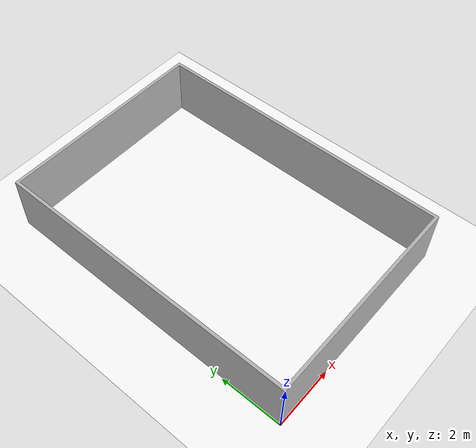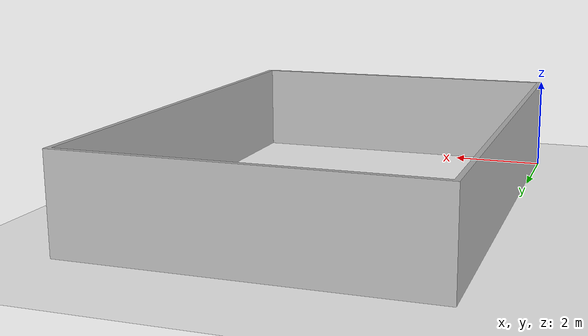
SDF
<sdf version="1.7">
 <world name="default">
  <light name="sun" type="directional">
   <cast_shadows>0</cast_shadows>
   <pose>0 0 10 0 -0 0</pose>
   <diffuse>0.3 0.3 0.3 1</diffuse>
   <specular>0.05 0.05 0.05 1</specular>
   <attenuation>
    <range>1000</range>
    <constant>0.9</constant>
    <linear>0.01</linear>
    <quadratic>0.001</quadratic>
   </attenuation>
   <direction>-0.5 0.1 -0.9</direction>
   <spot><inner_angle>0</inner_angle><outer_angle>0</outer_angle><falloff>0</falloff></spot>
  </light>
  <light name="sun1" type="directional">
   <cast_shadows>0</cast_shadows>
   <pose>2 2 10 0 -0 0</pose>
   <diffuse>0.3 0.3 0.3 1</diffuse>
   <specular>0.05 0.05 0.05 1</specular>
   <attenuation>
    <range>1000</range>
    <constant>0.9</constant>
    <linear>0.01</linear>
    <quadratic>0.001</quadratic>
   </attenuation>
   <direction>-0.5 0.1 -0.9</direction>
   <spot><inner_angle>0</inner_angle><outer_angle>0</outer_angle><falloff>0</falloff></spot>
  </light>
  <light name="sun2" type="directional">
   <cast_shadows>0</cast_shadows>
   <pose>2 4 10 0 -0 0</pose>
   <diffuse>0.3 0.3 0.3 1</diffuse>
   <specular>0.05 0.05 0.05 1</specular>
   <attenuation>
    <range>1000</range>
    <constant>0.9</constant>
    <linear>0.01</linear>
    <quadratic>0.001</quadratic>
   </attenuation>
   <direction>-0.5 0.1 -0.9</direction>
   <spot><inner_angle>0</inner_angle><outer_angle>0</outer_angle><falloff>0</falloff></spot>
  </light>
  <model name="ground_plane">
   <pose>0 0 0.09 0 -0 0</pose>
   <static>1</static>
   <link name="link">
    <collision name="collision">
     <geometry><plane><normal>0 0 1</normal><size>100 100</size></plane></geometry>
     <surface><friction><ode><mu>100</mu><mu2>50</mu2></ode></friction></surface>
    </collision>
    <visual name="visual">
     <cast_shadows>0</cast_shadows>
     <geometry><plane><normal>0 0 1</normal><size>100 100</size></plane></geometry>
     <material>
      <script><uri>file://media/materials/scripts/gazebo.material</uri><name>Gazebo/Transparent</name></script>
      <ambient>1 1 1 0.0</ambient>
      <diffuse>1 1 1 0.0</diffuse>
      <specular>0 0 0 0.0</specular>
      <emissive>0 0 0 0.0</emissive>
     </material>
     <transparency>1.0</transparency>
    </visual>
   </link>
  </model>
  <gravity>0 0 -9.8</gravity>
  <magnetic_field>6e-06 2.3e-05 -4.2e-05</magnetic_field>
  <atmosphere type="adiabatic"/>
  <physics type="ode">
   <max_step_size>0.001</max_step_size>
   <real_time_factor>1</real_time_factor>
   <real_time_update_rate>1000</real_time_update_rate>
  </physics>
  <scene><ambient>1.0 1.0 1.0 1.0</ambient><background>0.7 0.7 0.7 1</background><shadows>0</shadows></scene>
  <audio><device>default</device></audio>
  <spherical_coordinates>
   <surface_model>EARTH_WGS84</surface_model>
   <latitude_deg>0</latitude_deg>
   <longitude_deg>0</longitude_deg>
   <elevation>0</elevation>
   <heading_deg>0</heading_deg>
  </spherical_coordinates>
  <model name="gallery_floor">
   <static>1</static>
   <link name="link">
    <inertial>
     <mass>50</mass>
     <inertia>
      <ixx>0.0215292</ixx>
      <ixy>0</ixy>
      <ixz>0</ixz>
      <iyy>0.0215292</iyy>
      <iyz>0</iyz>
      <izz>0.0215292</izz>
     </inertia>
    </inertial>
    <collision name="collision">
     <geometry>
      <mesh><uri>model://empty_gallery_floor/Mesh/empty_gallery_floor.STL</uri><scale>20 20 10</scale></mesh>
     </geometry>
     <surface><contact><ode><max_vel>0.1</max_vel><min_depth>0.001</min_depth></ode></contact></surface>
    </collision>
    <visual name="visual">
     <geometry>
      <mesh><uri>model://empty_gallery_floor/Mesh/empty_gallery_floor.dae</uri><scale>20 20 10</scale></mesh>
     </geometry>
    </visual>
   </link>
  </model>
  <model name="walls">
   <static>1</static>
   <link name="link">
    <inertial>
     <mass>50</mass>
     <inertia>
      <ixx>0.0215292</ixx>
      <ixy>0</ixy>
      <ixz>0</ixz>
      <iyy>0.0215292</iyy>
      <iyz>0</iyz>
      <izz>0.0215292</izz>
     </inertia>
    </inertial>
    <collision name="collision">
     <geometry>
      <mesh><uri>model://empty_gallery_walls/Mesh/empty_gallery_walls.dae</uri><scale>20 20 10</scale></mesh>
     </geometry>
     <surface>
      <contact><ode><kp>1000000.0</kp><kd>1.0</kd><max_vel>0.1</max_vel><min_depth>0.001</min_depth></ode></contact>
      <friction><ode><mu>1.0</mu><mu2>1.0</mu2></ode></friction>
     </surface>
    </collision>
    <visual name="visual">
     <cast_shadows>0</cast_shadows>
     <geometry>
      <mesh><uri>model://empty_gallery_walls/Mesh/empty_gallery_walls.dae</uri><scale>20 20 10</scale></mesh>
     </geometry>
    </visual>
   </link>
  </model>
 </world>
</sdf>
